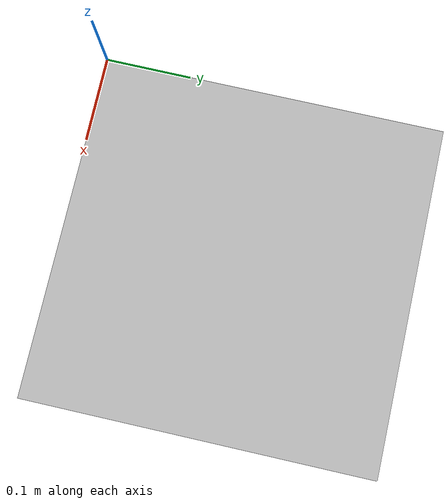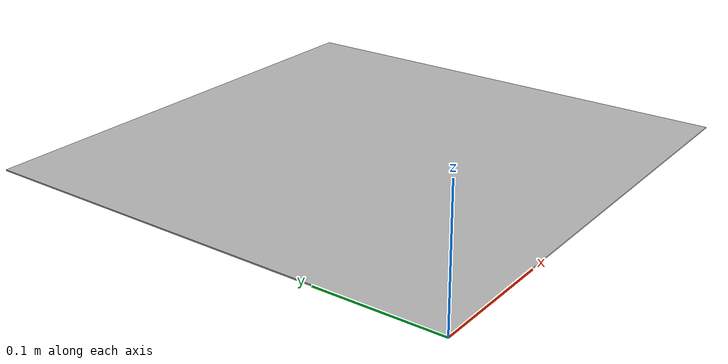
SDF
<?xml version="1.0" ?>
<sdf version="1.7">
    <model name="aruco_tag_100">
        <static>true</static>
        <pose>0 0 0 0 0 0</pose>
        <link name="link">
            <visual name="visual">
                <geometry>
                    <mesh>
                        <uri>model://aruco_tag_100/meshes/aruco_tag_100.obj</uri>
                        <scale>0.4 0.4 1</scale>
                    </mesh>
                </geometry>
            </visual>
        </link>
    </model>
</sdf>
